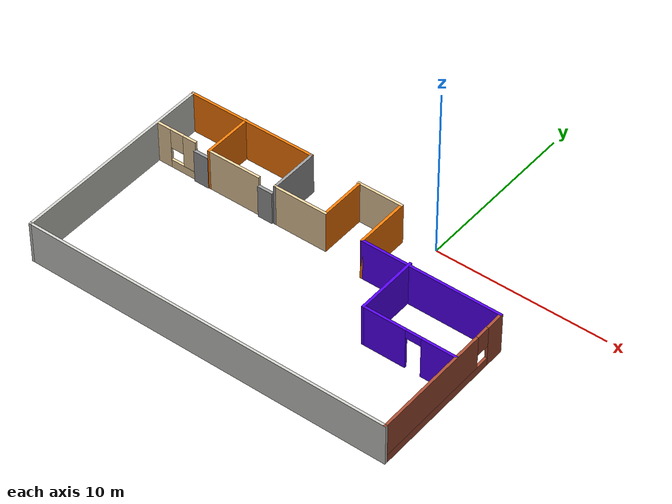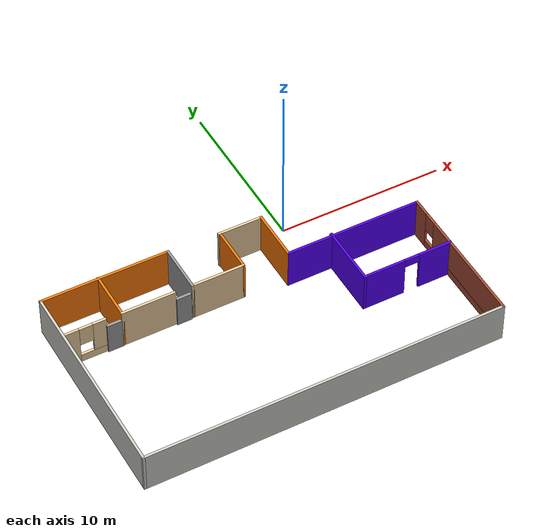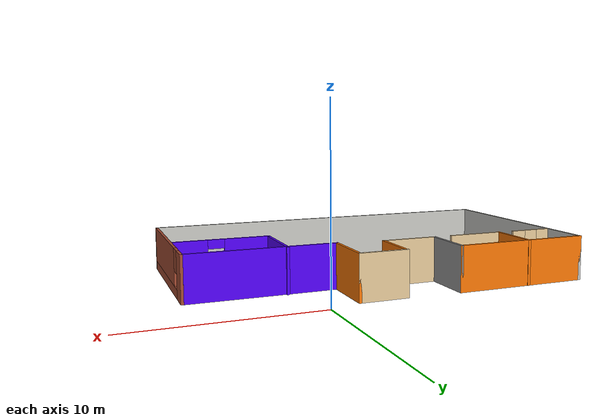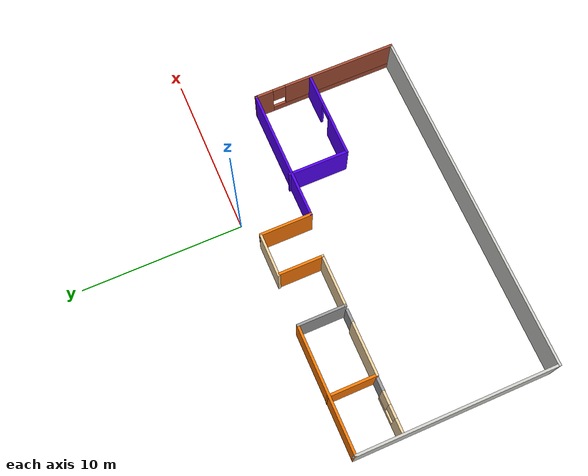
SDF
<?xml version='1.0'?>
<sdf version='1.6'>
  <model name='homebuild'>
    <pose frame=''>-4.30894 -6.49445 0 0 -0 0</pose>
    <link name='Door_0'>
      <collision name='Door_0_Collision'>
        <geometry>
          <box>
            <size>0.9 0.17 2</size>
          </box>
        </geometry>
        <pose frame=''>0 0 1 0 -0 0</pose>
      </collision>
      <visual name='Door_0_Visual'>
        <pose frame=''>0 0 1 0 -0 0</pose>
        <geometry>
          <box>
            <size>0.9 0.17 2</size>
          </box>
        </geometry>
        <material>
          <script>
            <uri>file://media/materials/scripts/gazebo.material</uri>
            <name>Gazebo/Grey</name>
          </script>
        </material>
      </visual>
      <pose frame=''>-3.64915 3.13358 0 0 -0 0</pose>
    </link>
    <link name='Door_1'>
      <collision name='Door_1_Collision'>
        <geometry>
          <box>
            <size>0.9 0.17 2</size>
          </box>
        </geometry>
        <pose frame=''>0 0 1 0 -0 0</pose>
      </collision>
      <visual name='Door_1_Visual'>
        <pose frame=''>0 0 1 0 -0 0</pose>
        <geometry>
          <box>
            <size>0.9 0.17 2</size>
          </box>
        </geometry>
        <material>
          <script>
            <uri>file://media/materials/scripts/gazebo.material</uri>
            <name>Gazebo/Grey</name>
          </script>
        </material>
      </visual>
      <pose frame=''>-7.76563 3.18607 0 0 -0 0</pose>
    </link>
    <link name='Wall_0'>
      <collision name='Wall_0_Collision'>
        <geometry>
          <box>
            <size>2.75 0.15 2.5</size>
          </box>
        </geometry>
        <pose frame=''>0 0 1.25 0 -0 0</pose>
      </collision>
      <visual name='Wall_0_Visual'>
        <pose frame=''>0 0 1.25 0 -0 0</pose>
        <geometry>
          <box>
            <size>2.75 0.15 2.5</size>
          </box>
        </geometry>
        <material>
          <script>
            <uri>file://media/materials/scripts/gazebo.material</uri>
            <name>Gazebo/Grey</name>
          </script>
          <ambient>0.921569 0.807843 0.615686 1</ambient>
        </material>
        <meta>
          <layer>0</layer>
        </meta>
      </visual>
      <pose frame=''>1.275 5.88801 0 0 -0 0</pose>
    </link>
    <link name='Wall_1'>
      <collision name='Wall_1_Collision'>
        <geometry>
          <box>
            <size>3.25 0.15 2.5</size>
          </box>
        </geometry>
        <pose frame=''>0 0 1.25 0 -0 0</pose>
      </collision>
      <visual name='Wall_1_Visual'>
        <pose frame=''>0 0 1.25 0 -0 0</pose>
        <geometry>
          <box>
            <size>3.25 0.15 2.5</size>
          </box>
        </geometry>
        <material>
          <script>
            <uri>file://media/materials/scripts/gazebo.material</uri>
            <name>Gazebo/Grey</name>
          </script>
          <ambient>0.996078 0.47451 0.0196078 1</ambient>
        </material>
        <meta>
          <layer>0</layer>
        </meta>
      </visual>
      <pose frame=''>2.575 4.33801 0 0 0 -1.5708</pose>
    </link>
    <link name='Wall_12'>
      <collision name='Wall_12_Collision'>
        <geometry>
          <box>
            <size>3 0.15 2.5</size>
          </box>
        </geometry>
        <pose frame=''>0 0 1.25 0 -0 0</pose>
      </collision>
      <visual name='Wall_12_Visual'>
        <pose frame=''>0 0 1.25 0 -0 0</pose>
        <geometry>
          <box>
            <size>3 0.15 2.5</size>
          </box>
        </geometry>
        <material>
          <script>
            <uri>file://media/materials/scripts/gazebo.material</uri>
            <name>Gazebo/Grey</name>
          </script>
          <ambient>0.996078 0.47451 0.0196078 1</ambient>
        </material>
        <meta>
          <layer>0</layer>
        </meta>
      </visual>
      <pose frame=''>-7.25812 4.63699 0 0 0 -1.5708</pose>
    </link>
    <link name='Wall_13'>
      <collision name='Wall_13_Collision'>
        <geometry>
          <box>
            <size>3.25 0.15 2.5</size>
          </box>
        </geometry>
        <pose frame=''>0 0 1.25 0 -0 0</pose>
      </collision>
      <visual name='Wall_13_Visual'>
        <pose frame=''>0 0 1.25 0 -0 0</pose>
        <geometry>
          <box>
            <size>3.25 0.15 2.5</size>
          </box>
        </geometry>
        <material>
          <script>
            <uri>file://media/materials/scripts/gazebo.material</uri>
            <name>Gazebo/Grey</name>
          </script>
          <ambient>0.921569 0.807843 0.615686 1</ambient>
        </material>
        <meta>
          <layer>0</layer>
        </meta>
      </visual>
      <pose frame=''>-5.70812 3.21199 0 0 -0 0</pose>
    </link>
    <link name='Wall_15'>
      <pose frame=''>-9.41016 3.27066 0 0 -0 0</pose>
      <visual name='Wall_15_Visual_0'>
        <pose frame=''>-0.806301 0 1.25 0 -0 0</pose>
        <geometry>
          <box>
            <size>0.887397 0.15 2.5</size>
          </box>
        </geometry>
        <material>
          <script>
            <uri>file://media/materials/scripts/gazebo.material</uri>
            <name>Gazebo/Grey</name>
          </script>
          <ambient>0.921569 0.807843 0.615686 1</ambient>
        </material>
        <meta>
          <layer>0</layer>
        </meta>
      </visual>
      <collision name='Wall_15_Collision_0'>
        <geometry>
          <box>
            <size>0.887397 0.15 2.5</size>
          </box>
        </geometry>
        <pose frame=''>-0.806301 0 1.25 0 -0 0</pose>
      </collision>
      <visual name='Wall_15_Visual_1'>
        <pose frame=''>0.443699 0 0.25 0 -0 0</pose>
        <geometry>
          <box>
            <size>1.6126 0.15 0.5</size>
          </box>
        </geometry>
        <material>
          <script>
            <uri>file://media/materials/scripts/gazebo.material</uri>
            <name>Gazebo/Grey</name>
          </script>
          <ambient>0.921569 0.807843 0.615686 1</ambient>
        </material>
        <meta>
          <layer>0</layer>
        </meta>
      </visual>
      <collision name='Wall_15_Collision_1'>
        <geometry>
          <box>
            <size>1.6126 0.15 0.5</size>
          </box>
        </geometry>
        <pose frame=''>0.443699 0 0.25 0 -0 0</pose>
      </collision>
      <visual name='Wall_15_Visual_2'>
        <pose frame=''>0.843699 0 1.5 0 -0 0</pose>
        <geometry>
          <box>
            <size>0.812603 0.15 2</size>
          </box>
        </geometry>
        <material>
          <script>
            <uri>file://media/materials/scripts/gazebo.material</uri>
            <name>Gazebo/Grey</name>
          </script>
          <ambient>0.921569 0.807843 0.615686 1</ambient>
        </material>
        <meta>
          <layer>0</layer>
        </meta>
      </visual>
      <collision name='Wall_15_Collision_2'>
        <geometry>
          <box>
            <size>0.812603 0.15 2</size>
          </box>
        </geometry>
        <pose frame=''>0.843699 0 1.5 0 -0 0</pose>
      </collision>
      <visual name='Wall_15_Visual_3'>
        <pose frame=''>0.037397 0 1.9 0 -0 0</pose>
        <geometry>
          <box>
            <size>0.8 0.15 1.2</size>
          </box>
        </geometry>
        <material>
          <script>
            <uri>file://media/materials/scripts/gazebo.material</uri>
            <name>Gazebo/Grey</name>
          </script>
          <ambient>0.921569 0.807843 0.615686 1</ambient>
        </material>
        <meta>
          <layer>0</layer>
        </meta>
      </visual>
      <collision name='Wall_15_Collision_3'>
        <geometry>
          <box>
            <size>0.8 0.15 1.2</size>
          </box>
        </geometry>
        <pose frame=''>0.037397 0 1.9 0 -0 0</pose>
      </collision>
    </link>
    <link name='Wall_17'>
      <collision name='Wall_17_Collision'>
        <geometry>
          <box>
            <size>3.75 0.15 2.5</size>
          </box>
        </geometry>
        <pose frame=''>0 0 1.25 0 -0 0</pose>
      </collision>
      <visual name='Wall_17_Visual'>
        <pose frame=''>0 0 1.25 0 -0 0</pose>
        <geometry>
          <box>
            <size>3.75 0.15 2.5</size>
          </box>
        </geometry>
        <material>
          <script>
            <uri>file://media/materials/scripts/gazebo.material</uri>
            <name>Gazebo/Grey</name>
          </script>
          <ambient>0.333333 0 1 1</ambient>
        </material>
        <meta>
          <layer>0</layer>
        </meta>
      </visual>
      <pose frame=''>5.32096 1.1056 0 0 0 -1.5708</pose>
    </link>
    <link name='Wall_18'>
      <pose frame=''>7.99596 -0.694395 0 0 -0 0</pose>
      <visual name='Wall_18_Visual_0'>
        <pose frame=''>-1.4687 0 1.25 0 -0 0</pose>
        <geometry>
          <box>
            <size>2.5626 0.15 2.5</size>
          </box>
        </geometry>
        <material>
          <script>
            <uri>file://media/materials/scripts/gazebo.material</uri>
            <name>Gazebo/Grey</name>
          </script>
          <ambient>0.333333 0 1 1</ambient>
        </material>
        <meta>
          <layer>0</layer>
        </meta>
      </visual>
      <collision name='Wall_18_Collision_0'>
        <geometry>
          <box>
            <size>2.5626 0.15 2.5</size>
          </box>
        </geometry>
        <pose frame=''>-1.4687 0 1.25 0 -0 0</pose>
      </collision>
      <visual name='Wall_18_Visual_1'>
        <pose frame=''>1.7313 0 1.25 0 -0 0</pose>
        <geometry>
          <box>
            <size>2.0374 0.15 2.5</size>
          </box>
        </geometry>
        <material>
          <script>
            <uri>file://media/materials/scripts/gazebo.material</uri>
            <name>Gazebo/Grey</name>
          </script>
          <ambient>0.333333 0 1 1</ambient>
        </material>
        <meta>
          <layer>0</layer>
        </meta>
      </visual>
      <collision name='Wall_18_Collision_1'>
        <geometry>
          <box>
            <size>2.0374 0.15 2.5</size>
          </box>
        </geometry>
        <pose frame=''>1.7313 0 1.25 0 -0 0</pose>
      </collision>
      <visual name='Wall_18_Visual_2'>
        <pose frame=''>0.262602 0 2.25 0 -0 0</pose>
        <geometry>
          <box>
            <size>0.9 0.15 0.5</size>
          </box>
        </geometry>
        <material>
          <script>
            <uri>file://media/materials/scripts/gazebo.material</uri>
            <name>Gazebo/Grey</name>
          </script>
          <ambient>0.333333 0 1 1</ambient>
        </material>
        <meta>
          <layer>0</layer>
        </meta>
      </visual>
      <collision name='Wall_18_Collision_2'>
        <geometry>
          <box>
            <size>0.9 0.15 0.5</size>
          </box>
        </geometry>
        <pose frame=''>0.262602 0 2.25 0 -0 0</pose>
      </collision>
    </link>
    <link name='Wall_2'>
      <collision name='Wall_2_Collision'>
        <geometry>
          <box>
            <size>8.25 0.15 2.5</size>
          </box>
        </geometry>
        <pose frame=''>0 0 1.25 0 -0 0</pose>
      </collision>
      <visual name='Wall_2_Visual'>
        <pose frame=''>0 0 1.25 0 -0 0</pose>
        <geometry>
          <box>
            <size>8.25 0.15 2.5</size>
          </box>
        </geometry>
        <material>
          <script>
            <uri>file://media/materials/scripts/gazebo.material</uri>
            <name>Gazebo/Grey</name>
          </script>
          <ambient>0.333333 0 1 1</ambient>
        </material>
        <meta>
          <layer>0</layer>
        </meta>
      </visual>
      <pose frame=''>6.625 2.78801 0 0 -0 0</pose>
    </link>
    <link name='Wall_3'>
      <pose frame=''>10.675 -1.63699 0 0 0 -1.5708</pose>
      <visual name='Wall_3_Visual_0'>
        <pose frame=''>-3.93124 0 1.25 0 -0 0</pose>
        <geometry>
          <box>
            <size>1.13753 0.15 2.5</size>
          </box>
        </geometry>
        <material>
          <script>
            <uri>file://media/materials/scripts/gazebo.material</uri>
            <name>Gazebo/Bricks</name>
          </script>
          <ambient>1 1 1 1</ambient>
        </material>
        <meta>
          <layer>0</layer>
        </meta>
      </visual>
      <collision name='Wall_3_Collision_0'>
        <geometry>
          <box>
            <size>1.13753 0.15 2.5</size>
          </box>
        </geometry>
        <pose frame=''>-3.93124 0 1.25 0 -0 0</pose>
      </collision>
      <visual name='Wall_3_Visual_1'>
        <pose frame=''>0.568765 0 0.25 0 -0 0</pose>
        <geometry>
          <box>
            <size>7.86247 0.15 0.5</size>
          </box>
        </geometry>
        <material>
          <script>
            <uri>file://media/materials/scripts/gazebo.material</uri>
            <name>Gazebo/Bricks</name>
          </script>
          <ambient>1 1 1 1</ambient>
        </material>
        <meta>
          <layer>0</layer>
        </meta>
      </visual>
      <collision name='Wall_3_Collision_1'>
        <geometry>
          <box>
            <size>7.86247 0.15 0.5</size>
          </box>
        </geometry>
        <pose frame=''>0.568765 0 0.25 0 -0 0</pose>
      </collision>
      <visual name='Wall_3_Visual_2'>
        <pose frame=''>0.968765 0 1.5 0 -0 0</pose>
        <geometry>
          <box>
            <size>7.06247 0.15 2</size>
          </box>
        </geometry>
        <material>
          <script>
            <uri>file://media/materials/scripts/gazebo.material</uri>
            <name>Gazebo/Bricks</name>
          </script>
          <ambient>1 1 1 1</ambient>
        </material>
        <meta>
          <layer>0</layer>
        </meta>
      </visual>
      <collision name='Wall_3_Collision_2'>
        <geometry>
          <box>
            <size>7.06247 0.15 2</size>
          </box>
        </geometry>
        <pose frame=''>0.968765 0 1.5 0 -0 0</pose>
      </collision>
      <visual name='Wall_3_Visual_3'>
        <pose frame=''>-2.96247 0 1.9 0 -0 0</pose>
        <geometry>
          <box>
            <size>0.8 0.15 1.2</size>
          </box>
        </geometry>
        <material>
          <script>
            <uri>file://media/materials/scripts/gazebo.material</uri>
            <name>Gazebo/Bricks</name>
          </script>
          <ambient>1 1 1 1</ambient>
        </material>
        <meta>
          <layer>0</layer>
        </meta>
      </visual>
      <collision name='Wall_3_Collision_3'>
        <geometry>
          <box>
            <size>0.8 0.15 1.2</size>
          </box>
        </geometry>
        <pose frame=''>-2.96247 0 1.9 0 -0 0</pose>
      </collision>
    </link>
    <link name='Wall_4'>
      <collision name='Wall_4_Collision'>
        <geometry>
          <box>
            <size>21.5 0.15 2.5</size>
          </box>
        </geometry>
        <pose frame=''>0 0 1.25 0 -0 0</pose>
      </collision>
      <visual name='Wall_4_Visual'>
        <pose frame=''>0 0 1.25 0 -0 0</pose>
        <geometry>
          <box>
            <size>21.5 0.15 2.5</size>
          </box>
        </geometry>
        <material>
          <script>
            <uri>file://media/materials/scripts/gazebo.material</uri>
            <name>Gazebo/CeilingTiled</name>
          </script>
          <ambient>0.996078 0.47451 0.0196078 1</ambient>
        </material>
        <meta>
          <layer>0</layer>
        </meta>
      </visual>
      <pose frame=''>0 -6.06199 0 0 -0 3.14159</pose>
    </link>
    <link name='Wall_5'>
      <collision name='Wall_5_Collision'>
        <geometry>
          <box>
            <size>12.25 0.15 2.5</size>
          </box>
        </geometry>
        <pose frame=''>0 0 1.25 0 -0 0</pose>
      </collision>
      <visual name='Wall_5_Visual'>
        <pose frame=''>0 0 1.25 0 -0 0</pose>
        <geometry>
          <box>
            <size>12.25 0.15 2.5</size>
          </box>
        </geometry>
        <material>
          <script>
            <uri>file://media/materials/scripts/gazebo.material</uri>
            <name>Gazebo/CeilingTiled</name>
          </script>
          <ambient>0.996078 0.47451 0.0196078 1</ambient>
        </material>
        <meta>
          <layer>0</layer>
        </meta>
      </visual>
      <pose frame=''>-10.675 -0.01199 0 0 -0 1.5708</pose>
    </link>
    <link name='Wall_6'>
      <collision name='Wall_6_Collision'>
        <geometry>
          <box>
            <size>7.75 0.15 2.5</size>
          </box>
        </geometry>
        <pose frame=''>0 0 1.25 0 -0 0</pose>
      </collision>
      <visual name='Wall_6_Visual'>
        <pose frame=''>0 0 1.25 0 -0 0</pose>
        <geometry>
          <box>
            <size>7.75 0.15 2.5</size>
          </box>
        </geometry>
        <material>
          <script>
            <uri>file://media/materials/scripts/gazebo.material</uri>
            <name>Gazebo/Grey</name>
          </script>
          <ambient>0.996078 0.47451 0.0196078 1</ambient>
        </material>
        <meta>
          <layer>0</layer>
        </meta>
      </visual>
      <pose frame=''>-6.875 6.03801 0 0 -0 0</pose>
    </link>
    <link name='Wall_7'>
      <collision name='Wall_7_Collision'>
        <geometry>
          <box>
            <size>3 0.15 2.5</size>
          </box>
        </geometry>
        <pose frame=''>0 0 1.25 0 -0 0</pose>
      </collision>
      <visual name='Wall_7_Visual'>
        <pose frame=''>0 0 1.25 0 -0 0</pose>
        <geometry>
          <box>
            <size>3 0.15 2.5</size>
          </box>
        </geometry>
        <material>
          <script>
            <uri>file://media/materials/scripts/gazebo.material</uri>
            <name>Gazebo/Grey</name>
          </script>
          <ambient>1 1 1 1</ambient>
        </material>
        <meta>
          <layer>0</layer>
        </meta>
      </visual>
      <pose frame=''>-3.075 4.61301 0 0 0 -1.5708</pose>
    </link>
    <link name='Wall_8'>
      <collision name='Wall_8_Collision'>
        <geometry>
          <box>
            <size>3.25 0.15 2.5</size>
          </box>
        </geometry>
        <pose frame=''>0 0 1.25 0 -0 0</pose>
      </collision>
      <visual name='Wall_8_Visual'>
        <pose frame=''>0 0 1.25 0 -0 0</pose>
        <geometry>
          <box>
            <size>3.25 0.15 2.5</size>
          </box>
        </geometry>
        <material>
          <script>
            <uri>file://media/materials/scripts/gazebo.material</uri>
            <name>Gazebo/Grey</name>
          </script>
          <ambient>0.921569 0.807843 0.615686 1</ambient>
        </material>
        <meta>
          <layer>0</layer>
        </meta>
      </visual>
      <pose frame=''>-1.525 3.18801 0 0 -0 0</pose>
    </link>
    <link name='Wall_9'>
      <collision name='Wall_9_Collision'>
        <geometry>
          <box>
            <size>2.75 0.15 2.5</size>
          </box>
        </geometry>
        <pose frame=''>0 0 1.25 0 -0 0</pose>
      </collision>
      <visual name='Wall_9_Visual'>
        <pose frame=''>0 0 1.25 0 -0 0</pose>
        <geometry>
          <box>
            <size>2.75 0.15 2.5</size>
          </box>
        </geometry>
        <material>
          <script>
            <uri>file://media/materials/scripts/gazebo.material</uri>
            <name>Gazebo/Grey</name>
          </script>
          <ambient>0.996078 0.47451 0.0196078 1</ambient>
        </material>
        <meta>
          <layer>0</layer>
        </meta>
      </visual>
      <pose frame=''>0.025 4.48801 0 0 -0 1.5708</pose>
    </link>
    <static>1</static>
  </model>
</sdf>
